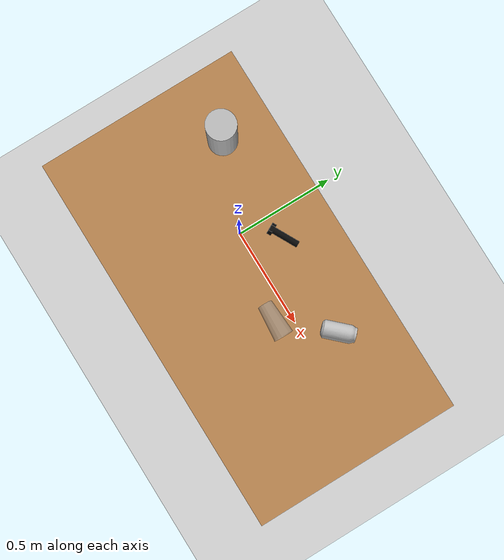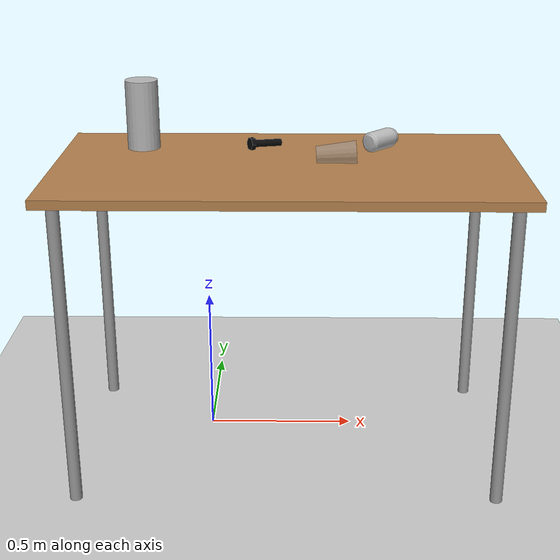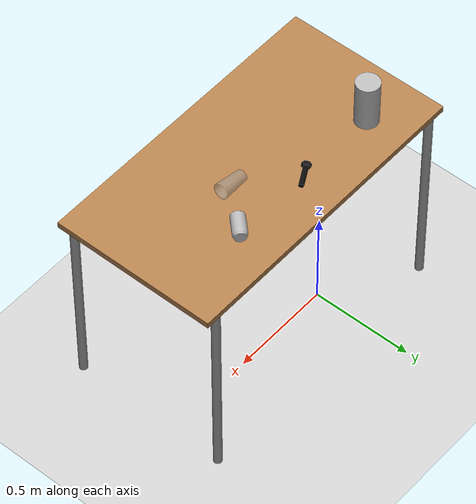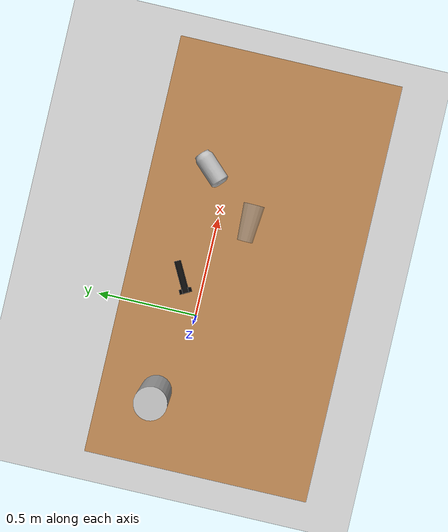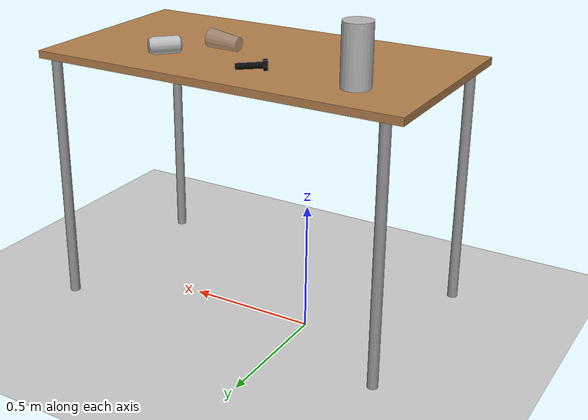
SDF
<sdf version="1.7">
 <world name="default">
  <light name="sun" type="directional">
   <pose>0 0 10 0 -0 0</pose>
   <diffuse>0.8 0.8 0.8 1</diffuse>
   <specular>0.2 0.2 0.2 1</specular>
   <attenuation>
    <range>1000</range>
    <constant>0.9</constant>
    <linear>0.01</linear>
    <quadratic>0.001</quadratic>
   </attenuation>
   <direction>-0.5 0.1 -0.9</direction>
   <spot><inner_angle>0</inner_angle><outer_angle>0</outer_angle><falloff>0</falloff></spot>
  </light>
  <model name="ground_plane">
   <static>1</static>
   <frame name="ground_plane::__model__" attached_to="ground_plane::link">
    <pose relative_to="__model__">0 0 0 0 -0 0</pose>
   </frame>
   <static>1</static>
   <link name="ground_plane::link">
    <collision name="collision">
     <geometry><plane><normal>0 0 1</normal><size>100 100</size></plane></geometry>
     <surface><friction><ode><mu>100</mu><mu2>50</mu2></ode></friction></surface>
    </collision>
    <visual name="visual">
     <cast_shadows>0</cast_shadows>
     <geometry><plane><normal>0 0 1</normal><size>100 100</size></plane></geometry>
     <material>
      <script><uri>file://media/materials/scripts/gazebo.material</uri><name>Gazebo/Grey</name></script>
     </material>
    </visual>
    <pose relative_to="ground_plane::__model__">0 0 0 0 -0 0</pose>
   </link>
  </model>
  <model name="table">
   <static>1</static>
   <frame name="table::__model__" attached_to="table::link">
    <pose relative_to="__model__">0 0 0 0 -0 0</pose>
   </frame>
   <static>1</static>
   <link name="table::link">
    <collision name="surface">
     <pose>0 0 1 0 -0 0</pose>
     <geometry><box><size>1.5 0.8 0.03</size></box></geometry>
     <surface><friction><ode><mu>0.6</mu><mu2>0.6</mu2></ode></friction></surface>
    </collision>
    <visual name="visual1">
     <pose>0 0 1 0 -0 0</pose>
     <geometry><box><size>1.5 0.8 0.03</size></box></geometry>
     <material>
      <script><uri>file://media/materials/scripts/gazebo.material</uri><name>Gazebo/Wood</name></script>
     </material>
    </visual>
    <collision name="front_left_leg">
     <pose>0.68 0.38 0.5 0 -0 0</pose>
     <geometry><cylinder><radius>0.02</radius><length>1</length></cylinder></geometry>
    </collision>
    <visual name="front_left_leg">
     <pose>0.68 0.38 0.5 0 -0 0</pose>
     <geometry><cylinder><radius>0.02</radius><length>1</length></cylinder></geometry>
     <material>
      <script><uri>file://media/materials/scripts/gazebo.material</uri><name>Gazebo/Grey</name></script>
     </material>
    </visual>
    <collision name="front_right_leg">
     <pose>0.68 -0.38 0.5 0 -0 0</pose>
     <geometry><cylinder><radius>0.02</radius><length>1</length></cylinder></geometry>
    </collision>
    <visual name="front_right_leg">
     <pose>0.68 -0.38 0.5 0 -0 0</pose>
     <geometry><cylinder><radius>0.02</radius><length>1</length></cylinder></geometry>
     <material>
      <script><uri>file://media/materials/scripts/gazebo.material</uri><name>Gazebo/Grey</name></script>
     </material>
    </visual>
    <collision name="back_right_leg">
     <pose>-0.68 -0.38 0.5 0 -0 0</pose>
     <geometry><cylinder><radius>0.02</radius><length>1</length></cylinder></geometry>
    </collision>
    <visual name="back_right_leg">
     <pose>-0.68 -0.38 0.5 0 -0 0</pose>
     <geometry><cylinder><radius>0.02</radius><length>1</length></cylinder></geometry>
     <material>
      <script><uri>file://media/materials/scripts/gazebo.material</uri><name>Gazebo/Grey</name></script>
     </material>
    </visual>
    <collision name="back_left_leg">
     <pose>-0.68 0.38 0.5 0 -0 0</pose>
     <geometry><cylinder><radius>0.02</radius><length>1</length></cylinder></geometry>
    </collision>
    <visual name="back_left_leg">
     <pose>-0.68 0.38 0.5 0 -0 0</pose>
     <geometry><cylinder><radius>0.02</radius><length>1</length></cylinder></geometry>
     <material>
      <script><uri>file://media/materials/scripts/gazebo.material</uri><name>Gazebo/Grey</name></script>
     </material>
    </visual>
    <pose relative_to="table::__model__">0 0 0 0 -0 0</pose>
   </link>
   <pose>0.27426 -0.133657 0 0 -0 0</pose>
  </model>
  <model name="coke_can">
   <frame name="coke_can::__model__" attached_to="coke_can::link">
    <pose relative_to="__model__">0 0 0 0 -0 0</pose>
   </frame>
   <link name="coke_can::link">
    <inertial>
     <pose>0 0 0.06 0 -0 0</pose>
     <mass>0.39</mass>
     <inertia>
      <ixx>0.00055575</ixx>
      <ixy>0</ixy>
      <ixz>0</ixz>
      <iyy>0.00055575</iyy>
      <iyz>0</iyz>
      <izz>0.0001755</izz>
     </inertia>
    </inertial>
    <collision name="collision">
     <pose>0.003937 0.004724 -0.18 0 -0 0</pose>
     <geometry><mesh><uri>model://coke_can/meshes/coke_can.dae</uri></mesh></geometry>
     <surface>
      <friction><ode><mu>1</mu><mu2>1</mu2></ode></friction>
      <contact><ode><kp>1e+07</kp><kd>1</kd><min_depth>0.001</min_depth><max_vel>0.1</max_vel></ode></contact>
     </surface>
    </collision>
    <visual name="visual">
     <pose>0.003937 0.004724 -0.18 0 -0 0</pose>
     <geometry><mesh><uri>model://coke_can/meshes/coke_can.dae</uri></mesh></geometry>
    </visual>
    <pose relative_to="coke_can::__model__">0 0 0 0 -0 0</pose>
   </link>
   <pose>0.542037 0.007871 1.04658 -1.54754 1.18118 -0.73691</pose>
  </model>
  <model name="plastic_cup">
   <frame name="plastic_cup::__model__" attached_to="plastic_cup::link">
    <pose relative_to="__model__">0 0 0 0 -0 0</pose>
   </frame>
   <link name="plastic_cup::link">
    <pose relative_to="plastic_cup::__model__">0 0 0.065 0 -0 0</pose>
    <inertial>
     <mass>0.0599</mass>
     <inertia>
      <ixx>0.000302896</ixx>
      <ixy>0</ixy>
      <ixz>0</ixz>
      <iyy>0.000302896</iyy>
      <iyz>0</iyz>
      <izz>3.28764e-05</izz>
     </inertia>
    </inertial>
    <collision name="collision">
     <geometry><mesh><uri>model://plastic_cup/meshes/plastic_cup.dae</uri></mesh></geometry>
     <surface>
      <contact>
       <poissons_ratio>0.35</poissons_ratio>
       <elastic_modulus>3.10264e+09</elastic_modulus>
       <ode><kp>100000</kp><kd>100</kd><max_vel>100</max_vel><min_depth>0.001</min_depth></ode>
      </contact>
      <friction>
       <torsional>
        <coefficient>1</coefficient>
        <use_patch_radius>0</use_patch_radius>
        <surface_radius>0.01</surface_radius>
       </torsional>
      </friction>
     </surface>
    </collision>
    <visual name="visual">
     <geometry><mesh><uri>model://plastic_cup/meshes/plastic_cup.dae</uri></mesh></geometry>
     <material>
      <script><uri>file://media/materials/scripts/gazebo.material</uri><name>Gazebo/GreyTransparent</name></script>
     </material>
    </visual>
   </link>
   <pose>0.376775 -0.113597 1.03381 1.49003 -0.195802 1.56304</pose>
  </model>
  <model name="bolt">
   <static>0</static>
   <frame name="bolt::__model__" attached_to="bolt::link">
    <pose relative_to="__model__">0 0 0 0 -0 0</pose>
   </frame>
   <static>0</static>
   <link name="bolt::link">
    <inertial>
     <mass>0.064</mass>
     <inertia>
      <ixx>2.1715e-05</ixx>
      <ixy>0</ixy>
      <ixz>0</ixz>
      <iyy>2.1715e-05</iyy>
      <iyz>0</iyz>
      <izz>1.78e-06</izz>
     </inertia>
    </inertial>
    <collision name="collision">
     <geometry><mesh><scale>1 1 1</scale><uri>model://bolt/meshes/bolt.stl</uri></mesh></geometry>
     <surface>
      <bounce><restitution_coefficient>0</restitution_coefficient><threshold>0.01</threshold></bounce>
      <friction><ode><mu>1.2</mu><mu2>1.2</mu2></ode></friction>
     </surface>
    </collision>
    <visual name="visual">
     <geometry><mesh><scale>1 1 1</scale><uri>model://bolt/meshes/bolt.dae</uri></mesh></geometry>
    </visual>
    <pose relative_to="bolt::__model__">0 0 0 0 -0 0</pose>
   </link>
   <pose>0.160569 0.050749 1.03392 -1.49052 -0.522196 2.02358</pose>
  </model>
  <model name="beer">
   <frame name="beer::__model__" attached_to="beer::link">
    <pose relative_to="__model__">0 0 0 0 -0 0</pose>
   </frame>
   <link name="beer::link">
    <pose relative_to="beer::__model__">0 0 0.115 0 -0 0</pose>
    <inertial>
     <mass>0.39</mass>
     <inertia><ixx>0.00058</ixx><ixy>0</ixy><ixz>0</ixz><iyy>0.00058</iyy><iyz>0</iyz><izz>0.00019</izz></inertia>
    </inertial>
    <collision name="collision">
     <geometry><cylinder><radius>0.055</radius><length>0.23</length></cylinder></geometry>
    </collision>
    <visual name="visual">
     <geometry><cylinder><radius>0.055</radius><length>0.23</length></cylinder></geometry>
     <material>
      <script>
       <uri>model://beer/materials/scripts</uri>
       <uri>model://beer/materials/textures</uri>
       <name>Beer/Diffuse</name>
      </script>
     </material>
    </visual>
   </link>
   <pose>-0.212304 0.068106 1.01499 -1e-06 2.6e-05 0.000963</pose>
  </model>
  <gravity>0 0 -9.8</gravity>
  <magnetic_field>6e-06 2.3e-05 -4.2e-05</magnetic_field>
  <atmosphere type="adiabatic"/>
  <physics type="ode">
   <max_step_size>0.001</max_step_size>
   <real_time_factor>1</real_time_factor>
   <real_time_update_rate>1000</real_time_update_rate>
  </physics>
  <scene><ambient>0.4 0.4 0.4 1</ambient><background>0.7 0.7 0.7 1</background><shadows>1</shadows></scene>
  <audio><device>default</device></audio>
  <spherical_coordinates>
   <surface_model>EARTH_WGS84</surface_model>
   <latitude_deg>0</latitude_deg>
   <longitude_deg>0</longitude_deg>
   <elevation>0</elevation>
   <heading_deg>0</heading_deg>
  </spherical_coordinates>
 </world>
</sdf>
